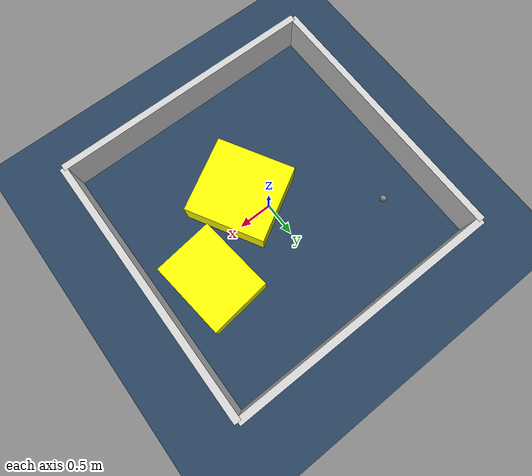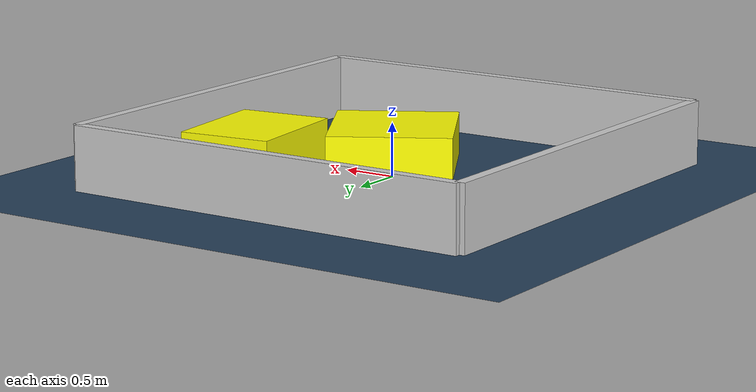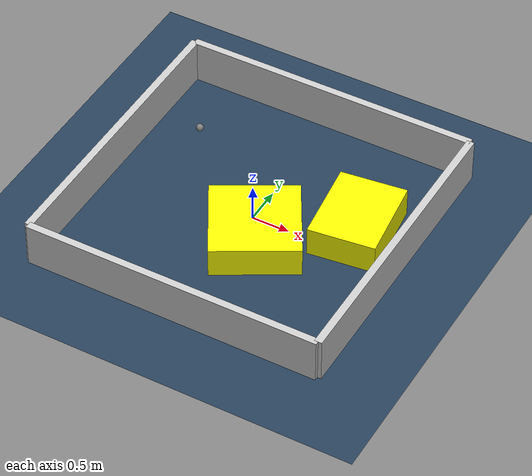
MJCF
<?xml version="1.0" ?>
<mujoco model="generated_environment">
  <option timestep="0.01" integrator="RK4" cone="elliptic"/>
  <default>
    <geom density="1"/>
  </default>
  <asset>
    <texture builtin="gradient" height="3072" rgb1="0.3 0.5 0.7" rgb2="0 0 0" type="skybox" width="512"/>
    <texture builtin="checker" height="300" mark="edge" markrgb="0.8 0.8 0.8" name="groundplane" rgb1="0.2 0.3 0.4" rgb2="0.1 0.2 0.3" type="2d" width="300"/>
    <material name="groundplane" reflectance="0.2" texrepeat="5 5" texture="groundplane" texuniform="true"/>
    <material name="robot" rgba="0.0 1.0 0.0 1"/>
  </asset>
  <worldbody>
    <light dir="0 0 -1" directional="true" pos="0 0 1.5"/>
    <geom condim="4" friction="1.0 0.005 0.001" material="groundplane" name="floor" size="0 0 0.05" type="plane"/>
    <body name="walls">
      <geom name="wall_1" condim="4" pos="-2.0 0.0 0.3" rgba="0.800000011920929 0.800000011920929 0.800000011920929 1.0" size="0.05 2.0 0.3" type="box"/>
      <geom name="wall_2" condim="4" pos="2.0 0.0 0.3" rgba="0.800000011920929 0.800000011920929 0.800000011920929 1.0" size="0.05 2.0 0.3" type="box"/>
      <geom name="wall_3" condim="4" pos="0.0 -2.0 0.3" rgba="0.800000011920929 0.800000011920929 0.800000011920929 1.0" size="2.0 0.05 0.3" type="box"/>
      <geom name="wall_4" condim="4" pos="0.0 2.0 0.3" rgba="0.800000011920929 0.800000011920929 0.800000011920929 1.0" size="2.0 0.05 0.3" type="box"/>
    </body>
    <body name="robot">
      <joint name="joint_x" type="slide" pos="0 0 0" axis="1 0 0"/>
      <joint name="joint_y" type="slide" pos="0 0 0" axis="0 1 0"/>
      <geom name="robot" type="sphere" pos="-1.319522021451125 0.9438172259676669 0.2" size="0.05" mass="5." friction="1.0 0.005 0.0001" condim="4"/>
      <site name="sensor_ball"/>
    </body>
    <body name="obstacle_1_movable">
      <geom name="obstacle_1_movable" condim="4" pos="0.22805990808908327 -0.3571924105468014 0.2" euler="0 0 299.7704685997401" friction="1.0 0.005 0.001" rgba="1 1 0 1" size="0.5906531021371957 0.57438200315855 0.2" type="box" mass="0.1"/>
      <joint type="free"/>
    </body>
    <body name="obstacle_2_movable">
      <geom name="obstacle_2_movable" condim="4" pos="1.2563901676202067 0.39156792158324727 0.2" euler="0 0 6.907310800958535" friction="1.0 0.005 0.001" rgba="1 1 0 1" size="0.44593115199754385 0.5692162890046708 0.2" type="box" mass="0.1"/>
      <joint type="free"/>
    </body>
  </worldbody>
  <actuator>
    <motor name="actuator_x" joint="joint_x" gear="1" ctrlrange="-1 1"/>
    <motor name="actuator_y" joint="joint_y" gear="1" ctrlrange="-1 1"/>
  </actuator>
</mujoco>
